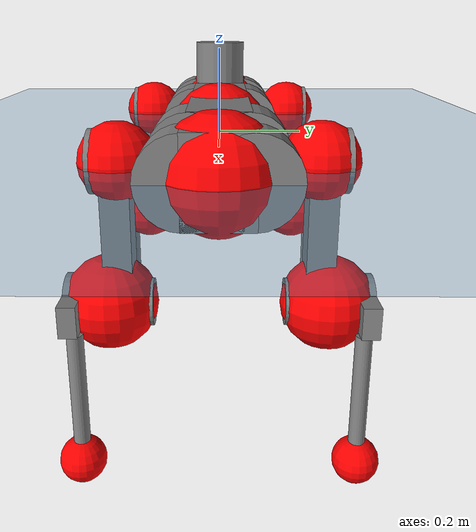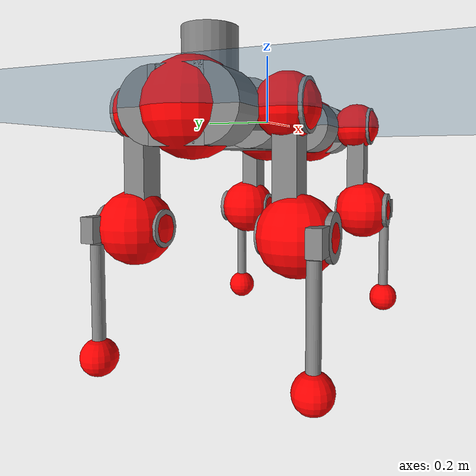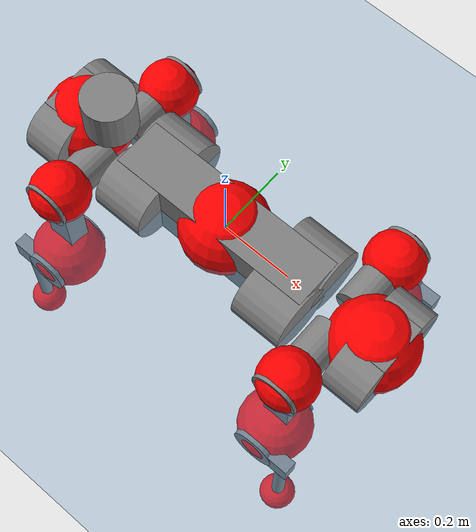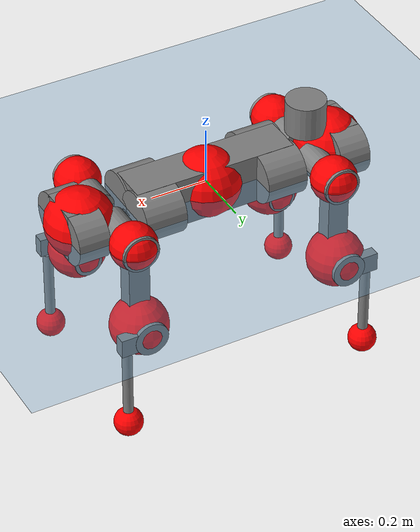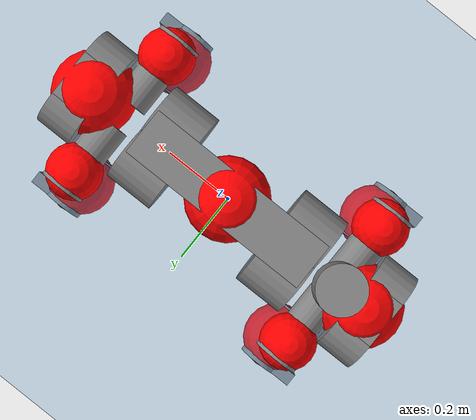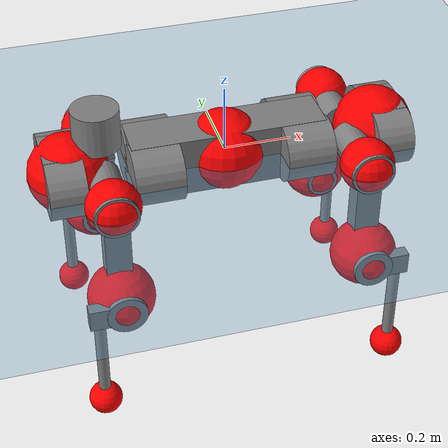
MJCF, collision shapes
<mujoco model="anymal_c">
  <compiler angle="radian" assetdir="assets" balanceinertia="true" inertiafromgeom="false"/>

  <option timestep="0.005" density="1.2" viscosity="2e-05"/>

  <size nkey="1"/>

  <visual>
    <quality shadowsize="8192"/>
    <map shadowclip="0.5"/>
  </visual>

  <default>
    <default class="/">
      <material specular="0" shininess="0.25"/>
      <geom contype="0" conaffinity="0" group="1" solref="-1000 -80"/>
      <site size="0.01 0.005 0.005" group="5"/>
      <general forcelimited="true" forcerange="-80 80" biastype="affine" gainprm="80" biasprm="0 -80 -2"/>
      <default class="anymal_c">
        <joint armature="0.01" damping="0.01" frictionloss="0.1"/>
        <default class="visual">
          <geom type="mesh" group="2"/>
          <default class="visual_zflip"/>
        </default>
        <default class="collision">
          <geom type="cylinder" group="3"/>
          <default class="foot">
            <geom size="0.03 0 0" type="sphere" condim="6" priority="1" friction="0.8 0.02 0.01" solimp="0.015 1 0.03"/>
          </default>
        </default>
      </default>
      <default class="reward_collision_sphere">
        <geom group="5" rgba="1 0 0 1"/>
      </default>
    </default>
  </default>

  <asset>
    <texture type="skybox" colorspace="auto" name="//unnamed_texture_0" builtin="gradient" rgb1="0.95 0.95 0.95" rgb2="0.95 0.95 0.95" width="100" height="600"/>
    <texture type="2d" colorspace="auto" name="texplane" builtin="checker" rgb1="0.345 0.575 0.748" rgb2="0.345 0.575 0.748" markrgb="1 1 1" width="512" height="512"/>
    <texture type="2d" colorspace="linear" name="base" file="base.png"/>
    <texture type="2d" colorspace="linear" name="top_shell" file="top_shell.png"/>
    <texture type="2d" colorspace="linear" name="bottom_shell" file="bottom_shell.png"/>
    <texture type="2d" colorspace="linear" name="remote" file="remote.png"/>
    <texture type="2d" colorspace="linear" name="hatch" file="hatch.png"/>
    <texture type="2d" colorspace="linear" name="handle" file="handle.png"/>
    <texture type="2d" colorspace="linear" name="face" file="face.png"/>
    <texture type="2d" colorspace="linear" name="battery" file="battery.png"/>
    <texture type="2d" colorspace="linear" name="lidar_cage" file="lidar_cage.png"/>
    <texture type="2d" colorspace="linear" name="depth_camera" file="depth_camera.png"/>
    <texture type="2d" colorspace="linear" name="wide_angle_camera" file="wide_angle_camera.png"/>
    <texture type="2d" colorspace="linear" name="lidar" file="lidar.png"/>
    <texture type="2d" colorspace="linear" name="drive" file="drive.png"/>
    <texture type="2d" colorspace="linear" name="hip_l" file="hip_l.png"/>
    <texture type="2d" colorspace="linear" name="shank_l" file="shank_l.png"/>
    <texture type="2d" colorspace="linear" name="foot" file="foot.png"/>
    <texture type="2d" colorspace="linear" name="thigh" file="thigh.png"/>
    <texture type="2d" colorspace="linear" name="shank_r" file="shank_r.png"/>
    <texture type="2d" colorspace="linear" name="hip_r" file="hip_r.png"/>
    <material name="MatPlane" class="/" texture="texplane" texuniform="true" texrepeat="2 2" specular="0.9" shininess="0.5"/>
    <material name="black_plastic" class="/" rgba="0.007 0.007 0.007 1"/>
    <material name="green" class="/" rgba="0.052 0.178 0.033 1"/>
    <material name="red" class="/" rgba="0.178 0.006 0.005 1"/>
    <material name="yellow" class="/" rgba="0.178 0.119 0.006 1"/>
    <material name="lwl" class="/" rgba="0.8 0.8 0.8 1"/>
    <material name="base" class="/" texture="base"/>
    <material name="top_shell" class="/" texture="top_shell"/>
    <material name="bottom_shell" class="/" texture="bottom_shell"/>
    <material name="hip_l" class="/" texture="hip_l"/>
    <material name="thigh" class="/" texture="thigh"/>
    <material name="shank_l" class="/" texture="shank_l"/>
    <material name="foot" class="/" texture="foot"/>
    <material name="hip_r" class="/" texture="hip_r"/>
    <material name="shank" class="/" texture="shank_r"/>
    <material name="hatch" class="/" texture="hatch"/>
    <material name="remote" class="/" texture="remote"/>
    <material name="handle" class="/" texture="handle"/>
    <material name="face" class="/" texture="face"/>
    <material name="depth_camera" class="/" texture="depth_camera"/>
    <material name="wide_angle_camera" class="/" texture="wide_angle_camera"/>
    <material name="battery" class="/" texture="battery"/>
    <material name="lidar_cage" class="/" texture="lidar_cage"/>
    <material name="lidar" class="/" texture="lidar"/>
    <material name="drive" class="/" texture="drive"/>
    <mesh name="base_0" class="/" file="base_0.obj"/>
    <mesh name="base_1" class="/" file="base_1.obj"/>
    <mesh name="base_2" class="/" file="base_2.obj"/>
    <mesh name="base_3" class="/" file="base_3.obj"/>
    <mesh name="base_4" class="/" file="base_4.obj"/>
    <mesh name="base_5" class="/" file="base_5.obj"/>
    <mesh name="top_shell" class="/" file="top_shell.obj"/>
    <mesh name="bottom_shell" class="/" file="bottom_shell.obj"/>
    <mesh name="remote" class="/" file="remote.obj"/>
    <mesh name="handle" class="/" file="handle.obj"/>
    <mesh name="face" class="/" file="face.obj"/>
    <mesh name="wide_angle_camera" class="/" file="wide_angle_camera.obj"/>
    <mesh name="depth_camera" class="/" file="depth_camera.obj"/>
    <mesh name="battery" class="/" file="battery.obj"/>
    <mesh name="lidar_cage" class="/" file="lidar_cage.obj"/>
    <mesh name="lidar" class="/" file="lidar.obj"/>
    <mesh name="drive" class="/" file="drive.obj"/>
    <mesh name="hip_l" class="/" file="hip_l.obj"/>
    <mesh name="thigh" class="/" file="thigh.obj"/>
    <mesh name="shank_l" class="/" file="shank_l.obj"/>
    <mesh name="foot" class="/" file="foot.obj"/>
    <mesh name="hip_r" class="/" file="hip_r.obj"/>
    <mesh name="hatch" class="/" file="hatch.obj"/>
    <mesh name="shank_r" class="/" file="shank_r.obj"/>
  </asset>

  <worldbody>
    <geom name="floor" class="/" size="100 100 0.125" type="plane" group="0" material="MatPlane"/>
    <light name="toplight_shadow" class="/" pos="0 0 5" dir="0.0990148 0.0990148 -0.990148" type="directional" ambient="0.04 0.04 0.04" diffuse="0.55 0.55 0.55" specular="0.12 0.12 0.12"/>
    <light name="toplight_fill" class="/" pos="0 0 5" dir="0.0990148 0.0990148 -0.990148" type="directional" castshadow="false" ambient="0.04 0.04 0.04" diffuse="0.3 0.3 0.3" specular="0.08 0.08 0.08"/>
    <body name="trunk" childclass="anymal_c" pos="0.000111055 0.000513795 0.000454668" quat="1 0.00017304 -2.64332e-05 0.000172684">
      <inertial pos="0.00322836 -0.00167297 0.0511148" quat="0.499824 0.498581 0.49805 0.503526" mass="18.1234" diaginertia="0.681744 0.356131 0.274622"/>
      <joint name="//unnamed_joint_0" type="free" armature="0" damping="0" frictionloss="0"/>
      <geom name="//unnamed_geom_1" class="visual" material="green" mesh="base_0"/>
      <geom name="//unnamed_geom_2" class="visual" material="yellow" mesh="base_1"/>
      <geom name="//unnamed_geom_3" class="visual" material="red" mesh="base_2"/>
      <geom name="//unnamed_geom_4" class="visual" material="black_plastic" mesh="base_3"/>
      <geom name="//unnamed_geom_5" class="visual" material="lwl" mesh="base_4"/>
      <geom name="//unnamed_geom_6" class="visual" material="base" mesh="base_5"/>
      <geom name="trunk_1" class="collision" size="0.287466 0.0693883 0.0892135" type="box"/>
      <geom name="trunk_2" class="collision" size="0.0892135 0.0718664" pos="0.222224 0.0629811 0" quat="0.707107 0 0.707107 0"/>
      <geom name="trunk_3" class="collision" size="0.0892135 0.0718664" pos="-0.222224 0.0629811 0" quat="0.707107 0 0.707107 0"/>
      <geom name="trunk_4" class="collision" size="0.0892135 0.0718664" pos="0.222224 -0.0629811 0" quat="0.707107 0 0.707107 0"/>
      <geom name="trunk_5" class="collision" size="0.0892135 0.0718664" pos="-0.222224 -0.0629811 0" quat="0.707107 0 0.707107 0"/>
      <geom name="//unnamed_geom_12" class="visual" material="top_shell" mesh="top_shell"/>
      <geom name="//unnamed_geom_13" class="visual" material="bottom_shell" mesh="bottom_shell"/>
      <geom name="//unnamed_geom_14" class="visual" material="remote" mesh="remote"/>
      <geom name="//unnamed_geom_15" class="visual" material="handle" mesh="handle"/>
      <geom name="//unnamed_geom_16" class="visual" pos="0.423503 0 0" quat="1 0 0 0" material="face" mesh="face"/>
      <geom name="trunk_6" class="collision" size="0.0545193 0.0693883 0.0892135" pos="0.479697 0 0" type="box"/>
      <geom name="//unnamed_geom_18" class="collision" size="0.0892135 0.0545193" pos="0.479697 0.0629811 0" quat="0.707107 0 0.707107 0"/>
      <geom name="//unnamed_geom_19" class="collision" size="0.0892135 0.0545193" pos="0.479697 -0.0629811 0" quat="0.707107 0 0.707107 0"/>
      <geom name="//unnamed_geom_20" class="visual" pos="0.471678 0 -0.0309608" quat="0.965926 0 0.258819 0" material="depth_camera" mesh="depth_camera"/>
      <geom name="//unnamed_geom_21" class="visual" pos="0.524142 0 0.0157534" material="wide_angle_camera" mesh="wide_angle_camera"/>
      <geom name="//unnamed_geom_22" class="visual_zflip" pos="-0.423503 0 0" quat="0 0 0 1" material="face" mesh="face"/>
      <geom name="trunk_7" class="collision" size="0.0545193 0.0693883 0.0892135" pos="-0.479697 0 0" quat="0 0 0 1" type="box"/>
      <geom name="//unnamed_geom_24" class="collision" size="0.0892135 0.0545193" pos="-0.479697 -0.0629811 0" quat="0 -0.707107 0 0.707107"/>
      <geom name="//unnamed_geom_25" class="collision" size="0.0892135 0.0545193" pos="-0.479697 0.0629811 0" quat="0 -0.707107 0 0.707107"/>
      <geom name="//unnamed_geom_26" class="visual" pos="-0.471678 0 -0.0309608" quat="0 -0.258819 0 0.965926" material="depth_camera" mesh="depth_camera"/>
      <geom name="//unnamed_geom_27" class="visual_zflip" pos="-0.524142 0 0.0157534" quat="0 0 0 1" material="wide_angle_camera" mesh="wide_angle_camera"/>
      <geom name="//unnamed_geom_28" class="visual" material="battery" mesh="battery"/>
      <geom name="//unnamed_geom_29" class="visual" pos="0 0.0671938 0.0303376" quat="0.683013 -0.183013 0.183013 0.683013" material="depth_camera" mesh="depth_camera"/>
      <geom name="//unnamed_geom_30" class="visual" pos="0 -0.0671938 0.0303376" quat="0.683013 0.183013 0.183013 -0.683013" material="depth_camera" mesh="depth_camera"/>
      <geom name="//unnamed_geom_31" class="visual" pos="-0.371906 0 0.0773465" quat="1 0 0 0" material="lidar_cage" mesh="lidar_cage"/>
      <geom name="trunk_8" class="collision" size="0.0693883 0.0594756" pos="-0.371906 0 0.140486"/>
      <geom name="//unnamed_geom_33" class="visual" pos="-0.371906 -4.79267e-05 0.149642" quat="0.707107 0 0 -0.707107" material="lidar" mesh="lidar"/>
      <geom name="//unnamed_geom_34" class="visual" pos="0.306414 0.0936261 -2.63243e-09" quat="0.258819 0.965926 0 0" material="drive" mesh="drive"/>
      <geom name="//unnamed_geom_35" class="visual" pos="0.306414 -0.0936261 2.63243e-09" quat="0.258819 -0.965926 0 0" material="drive" mesh="drive"/>
      <geom name="//unnamed_geom_36" class="visual" pos="-0.306414 0.0936261 2.63243e-09" quat="0 0 0.965926 -0.258819" material="drive" mesh="drive"/>
      <geom name="//unnamed_geom_37" class="visual" pos="-0.306414 -0.0936261 -2.63243e-09" quat="0 0 -0.965926 -0.258819" material="drive" mesh="drive"/>
      <geom name="//unnamed_geom_38" class="visual" pos="0.118519 0 0.0768203" quat="1 0 0 0" material="hatch" mesh="hatch"/>
      <geom name="//unnamed_geom_39" class="reward_collision_sphere" size="0.118951"/>
      <geom name="//unnamed_geom_40" class="reward_collision_sphere" size="0.118951" pos="0.459774 0 0"/>
      <geom name="//unnamed_geom_41" class="reward_collision_sphere" size="0.118951" pos="-0.459774 0 0"/>
      <site name="imu" pos="0.252399 0.00692663 0.0480624" size="0.00991261"/>
      <camera name="track" pos="0 -1.79946 0" quat="0.707107 0.707107 0 0" mode="trackcom"/>
      <camera name="ego_camera" pos="0.459774 0 -0.0420933" quat="-0.5 -0.5 0.5 0.5"/>
      <body name="LF_HIP" pos="0.307385 0.0937088 -0.000282118" quat="0.258826 0.965924 6.91539e-05 5.34017e-06">
        <inertial pos="0.0579952 -0.0137045 -0.00849155" quat="-0.124 0.71462 -0.140042 0.67404" mass="2.70779" diaginertia="0.00654566 0.00294542 0.00427381"/>
        <joint name="LF_HAA" pos="0 0 0" axis="0.999996 -0.00238213 0.00115567" range="-0.700047 0.48144" armature="0.00995581" damping="0.00936062" frictionloss="0.0985063"/>
        <geom name="//unnamed_geom_42" class="visual" pos="0 -0.000154854 2.54347e-05" quat="0.258819 -0.965926 0 0" material="hip_l" mesh="hip_l"/>
        <geom name="//unnamed_geom_43" class="visual" pos="0.061201 -0.0726061 -0.0430479" quat="0.183013 -0.683013 0.683013 0.183013" material="drive" mesh="drive"/>
        <geom name="//unnamed_geom_44" class="collision" size="0.049563 0.0693883" pos="0.061201 -0.0107606 -0.00726636" quat="-0.353553 -0.612372 0.612372 -0.353553"/>
        <body name="LF_THIGH" pos="0.0619516 -0.0666932 -0.045181" quat="0.183351 -0.6826 0.683456 0.182559">
          <inertial pos="0.0317029 0.00177891 -0.258984" quat="0.99304 -0.00545688 -0.0782904 0.0878213" mass="2.96088" diaginertia="0.0334059 0.0179813 0.00541498"/>
          <joint name="LF_HFE" pos="0 0 0" axis="1 -0.000132033 -0.00017108" range="-3.13661 3.11475" armature="0.0107183" damping="0.0122574" frictionloss="0.103598"/>
          <geom name="//unnamed_geom_45" class="visual" pos="0.00242713 3.82458e-06 0" quat="0.707107 0 0 -0.707107" material="thigh" mesh="thigh"/>
          <geom name="//unnamed_geom_46" class="collision" size="0.0644319 0.0396504" pos="0.0408688 0 0" quat="0.5 0.5 -0.5 -0.5"/>
          <geom name="//unnamed_geom_47" class="collision" size="0.0371723 0.0297378 0.140079" pos="0.0306516 0 -0.148709" quat="0.707107 0 0 -0.707107" type="box"/>
          <geom name="//unnamed_geom_48" class="visual" pos="0.102478 0 -0.299915" quat="1 0 0 0" material="drive" mesh="drive"/>
          <geom name="//unnamed_geom_49" class="collision" size="0.049563 0.0693883" pos="0.0309581 0 -0.299915" quat="0.707107 0 0.707107 0"/>
          <geom name="//unnamed_geom_50" class="reward_collision_sphere" size="0.0793009" pos="0.025543 0 0"/>
          <body name="LF_SHANK" pos="0.102793 -8.14231e-05 -0.300618" quat="1 4.92099e-05 -8.52863e-05 0.000208123">
            <inertial pos="0.00472868 -0.0543821 -0.0852033" quat="0.993178 -0.113503 0.00128847 -0.0266987" mass="0.573297" diaginertia="0.0114153 0.00557001 0.00144999"/>
            <joint name="LF_KFE" pos="0 0 0" axis="1 0.000902322 8.64282e-05" range="-3.10683 3.14197" armature="0.0104029" damping="0.00191704" frictionloss="0.0963396"/>
            <geom name="//unnamed_geom_51" class="visual" pos="0.000791433 0.00421996 0" quat="0.707107 0 0 -0.707107" material="shank_l" mesh="shank_l"/>
            <geom name="LF_kfe_act" class="collision" size="0.0594756 0.0198252" pos="0.0204344 0 0" quat="0.5 0.5 -0.5 -0.5"/>
            <geom name="//unnamed_geom_53" class="collision" size="0.0569965 0.0334551 0.018834" pos="0.0204344 -0.0517335 0" quat="0.5 0.5 -0.5 -0.5" type="box"/>
            <geom name="//unnamed_geom_54" class="visual" pos="0.0133332 -0.0777713 -0.355657" quat="0.382683 0 0 -0.92388" material="foot" mesh="foot"/>
            <geom name="LF_calf" class="collision" size="0.0173471 0.140018" pos="0.0133334 -0.0791312 -0.177829" quat="0.707107 0 0 -0.707107"/>
            <geom name="LF_foot" class="foot" size="0.0302365" pos="0.0133334 -0.0791312 -0.33198" quat="0.707107 0 0 -0.707107"/>
            <geom name="//unnamed_geom_57" class="reward_collision_sphere" size="0.0991261" pos="-0.051086 0 0"/>
            <geom name="//unnamed_geom_58" class="reward_collision_sphere" size="0.049563" pos="0.0133334 -0.0791312 -0.33198"/>
            <site name="LF_foot" class="foot" pos="0.0133334 -0.0791312 -0.33198" quat="0.707107 0 0 -0.707107" size="0.00991261"/>
          </body>
        </body>
      </body>
      <body name="RF_HIP" pos="0.305466 -0.0929426 -0.00186688" quat="0.259094 -0.965852 2.62055e-05 -8.94337e-05">
        <inertial pos="0.0575094 0.0131724 -0.00794566" quat="0.1328 0.676448 0.129681 0.712716" mass="2.72951" diaginertia="0.00653445 0.00290348 0.00420106"/>
        <joint name="RF_HAA" pos="0 0 0" axis="0.999996 -0.00255562 -0.000853794" range="-0.489189 0.73652" armature="0.0104566" damping="0.0122866" frictionloss="0.0977318"/>
        <geom name="//unnamed_geom_59" class="visual" pos="0 0.000154853 2.54346e-05" quat="0.258819 0.965926 0 0" material="hip_r" mesh="hip_r"/>
        <geom name="//unnamed_geom_60" class="visual" pos="0.061201 0.0726061 -0.0430479" quat="0.183013 0.683013 0.683013 -0.183013" material="drive" mesh="drive"/>
        <geom name="//unnamed_geom_61" class="collision" size="0.049563 0.0693883" pos="0.061201 0.0107606 -0.00726636" quat="-0.353553 0.612372 0.612372 0.353553"/>
        <body name="RF_THIGH" pos="0.0623289 0.0667719 -0.0459759" quat="0.183021 0.683059 0.682982 -0.182946">
          <inertial pos="0.0306206 0.000519849 -0.25704" quat="0.992572 -0.0038614 -0.0838488 0.0880592" mass="2.98455" diaginertia="0.0339629 0.017653 0.00540777"/>
          <joint name="RF_HFE" pos="0 0 0" axis="0.999987 -0.00267041 -0.00432775" stiffness="0.0112257" range="-3.13678 3.12502" armature="0.00951182" damping="0.0131687" frictionloss="0.102653"/>
          <geom name="//unnamed_geom_62" class="visual" pos="0.00242713 3.82458e-06 0" quat="0.707107 0 0 -0.707107" material="thigh" mesh="thigh"/>
          <geom name="//unnamed_geom_63" class="collision" size="0.0644319 0.0396504" pos="0.0408688 0 0" quat="0.5 0.5 0.5 0.5"/>
          <geom name="//unnamed_geom_64" class="collision" size="0.0371723 0.0297378 0.140079" pos="0.0306516 0 -0.148709" quat="0.707107 0 0 0.707107" type="box"/>
          <geom name="//unnamed_geom_65" class="visual" pos="0.102478 0 -0.299915" quat="1 0 0 0" material="drive" mesh="drive"/>
          <geom name="//unnamed_geom_66" class="collision" size="0.049563 0.0693883" pos="0.0309581 0 -0.299915" quat="0.707107 0 0.707107 0"/>
          <geom name="//unnamed_geom_67" class="reward_collision_sphere" size="0.0793009" pos="0.025543 0 0"/>
          <body name="RF_SHANK" pos="0.103148 -0.000679707 -0.298374" quat="1 8.81944e-05 -6.98908e-05 -8.45115e-05">
            <inertial pos="0.00655486 0.0546163 -0.0849942" quat="0.993083 0.11367 -0.000555695 0.0294055" mass="0.584462" diaginertia="0.0116672 0.00553522 0.00148794"/>
            <joint name="RF_KFE" pos="0 0 0" axis="0.999998 -0.00221426 0.000146163" range="-3.15411 3.13364" armature="0.00966097" damping="0" frictionloss="0.10288"/>
            <geom name="//unnamed_geom_68" class="visual" pos="0.000791429 -0.00421995 0" quat="0.707107 0 0 0.707107" material="shank" mesh="shank_r"/>
            <geom name="RF_kfe_act" class="collision" size="0.0594756 0.0198252" pos="0.0204344 0 0" quat="0.5 0.5 0.5 0.5"/>
            <geom name="//unnamed_geom_70" class="collision" size="0.0569965 0.0334551 0.018834" pos="0.0204344 0.0517335 0" quat="0.5 0.5 0.5 0.5" type="box"/>
            <geom name="//unnamed_geom_71" class="visual" pos="0.0133336 0.0777713 -0.355657" quat="0.382683 0 0 0.92388" material="foot" mesh="foot"/>
            <geom name="RF_calf" class="collision" size="0.0173471 0.140018" pos="0.0133334 0.0791312 -0.177829" quat="0.707107 0 0 0.707107"/>
            <geom name="RF_foot" class="foot" size="0.0269836" pos="0.0133334 0.0791312 -0.33198" quat="0.707107 0 0 0.707107"/>
            <geom name="//unnamed_geom_74" class="reward_collision_sphere" size="0.0991261" pos="-0.051086 0 0"/>
            <geom name="//unnamed_geom_75" class="reward_collision_sphere" size="0.049563" pos="0.0133334 0.0791312 -0.33198"/>
            <site name="RF_foot" class="foot" pos="0.0133334 0.0791312 -0.33198" quat="0.707107 0 0 0.707107" size="0.00991261"/>
          </body>
        </body>
      </body>
      <body name="LH_HIP" pos="-0.305889 0.0928859 0.000156706" quat="9.13139e-07 -0.00011744 0.965914 -0.258864">
        <inertial pos="0.0583665 0.0134831 -0.00952683" quat="0.135456 0.679362 0.12782 0.709775" mass="2.67727" diaginertia="0.00656275 0.00296694 0.00424432"/>
        <joint name="LH_HAA" pos="0 0 0" axis="0.999987 0.004313 -0.00266903" range="-0.485356 0.734942" armature="0.00983314" damping="0.0109208" frictionloss="0.0993065"/>
        <geom name="//unnamed_geom_76" class="visual" pos="0 0.000154853 2.54346e-05" quat="-0.258819 -0.965926 0 0" material="hip_r" mesh="hip_r"/>
        <geom name="//unnamed_geom_77" class="visual" pos="0.061201 0.0726061 -0.0430479" quat="0.183013 0.683013 0.683013 -0.183013" material="drive" mesh="drive"/>
        <geom name="//unnamed_geom_78" class="collision" size="0.049563 0.0693883" pos="0.061201 0.0107606 -0.00726636" quat="-0.353553 0.612372 0.612372 0.353553"/>
        <body name="LH_THIGH" pos="0.0607099 0.066485 -0.0446671" quat="0.18312 0.682546 0.683279 -0.183654">
          <inertial pos="0.0312444 0.00175887 -0.259086" quat="0.992775 -0.00512666 -0.0806699 0.0886822" mass="2.93146" diaginertia="0.0340253 0.0174145 0.0054489"/>
          <joint name="LH_HFE" pos="0 0 0" axis="0.999968 0.00231022 0.00769645" range="-3.1529 3.14499" armature="0.00962563" damping="0.00842093" frictionloss="0.103522"/>
          <geom name="//unnamed_geom_79" class="visual" pos="0.00242713 3.82458e-06 0" quat="0.707107 0 0 -0.707107" material="thigh" mesh="thigh"/>
          <geom name="//unnamed_geom_80" class="collision" size="0.0644319 0.0396504" pos="0.0408688 0 0" quat="0.5 0.5 -0.5 -0.5"/>
          <geom name="//unnamed_geom_81" class="collision" size="0.0371723 0.0297378 0.140079" pos="0.0306516 0 -0.148709" quat="0.707107 0 0 -0.707107" type="box"/>
          <geom name="//unnamed_geom_82" class="visual" pos="0.102478 0 -0.299915" quat="1 0 0 0" material="drive" mesh="drive"/>
          <geom name="//unnamed_geom_83" class="collision" size="0.049563 0.0693883" pos="0.0309581 0 -0.299915" quat="0.707107 0 0.707107 0"/>
          <geom name="//unnamed_geom_84" class="reward_collision_sphere" size="0.0793009" pos="0.025543 0 0"/>
          <body name="LH_SHANK" pos="0.103363 -0.00148957 -0.300884" quat="1 -0.000256899 0.000285143 0.00046761">
            <inertial pos="0.00578111 0.0553145 -0.0851705" quat="0.992939 0.11587 -0.00100981 0.0254208" mass="0.579733" diaginertia="0.011426 0.00549272 0.00145194"/>
            <joint name="LH_KFE" pos="0 0 0" axis="0.999999 -0.00103897 -0.000269866" range="-3.11522 3.14458" armature="0.0107545" damping="0.00765501" frictionloss="0.102239"/>
            <geom name="//unnamed_geom_85" class="visual" pos="0.000791429 -0.00421995 0" quat="-0.707107 0 0 -0.707107" material="shank" mesh="shank_r"/>
            <geom name="LH_kfe_act" class="collision" size="0.0594756 0.0198252" pos="0.0204344 0 0" quat="0.5 0.5 -0.5 -0.5"/>
            <geom name="//unnamed_geom_87" class="collision" size="0.0569965 0.0334551 0.018834" pos="0.0204344 0.0517335 0" quat="0.5 0.5 -0.5 -0.5" type="box"/>
            <geom name="//unnamed_geom_88" class="visual" pos="0.0133336 0.0777713 -0.355657" quat="-0.382683 0 0 -0.92388" material="foot" mesh="foot"/>
            <geom name="LH_calf" class="collision" size="0.0173471 0.140018" pos="0.0133334 0.0791312 -0.177829" quat="0.707107 0 0 -0.707107"/>
            <geom name="LH_foot" class="foot" size="0.0311848" pos="0.0133334 0.0791312 -0.33198" quat="0.707107 0 0 -0.707107"/>
            <geom name="//unnamed_geom_91" class="reward_collision_sphere" size="0.0991261" pos="-0.051086 0 0"/>
            <geom name="//unnamed_geom_92" class="reward_collision_sphere" size="0.049563" pos="0.0133334 0.0791312 -0.33198"/>
            <site name="LH_foot" class="foot" pos="0.0133334 0.0791312 -0.33198" quat="0.707107 0 0 -0.707107" size="0.00991261"/>
          </body>
        </body>
      </body>
      <body name="RH_HIP" pos="-0.307946 -0.0937512 -0.000246862" quat="2.42621e-05 -0.000841245 -0.965764 -0.259419">
        <inertial pos="0.0577622 -0.0134582 -0.00946213" quat="-0.128278 0.709816 -0.135042 0.679315" mass="2.74094" diaginertia="0.00659333 0.00291859 0.00439824"/>
        <joint name="RH_HAA" pos="0 0 0" axis="0.999998 -0.0014458 0.00154523" range="-0.727888 0.485077" armature="0.0104398" damping="0.0101578" frictionloss="0.0955025"/>
        <geom name="//unnamed_geom_93" class="visual" pos="0 -0.000154854 2.54347e-05" quat="-0.258819 0.965926 0 0" material="hip_l" mesh="hip_l"/>
        <geom name="//unnamed_geom_94" class="visual" pos="0.061201 -0.0726061 -0.0430479" quat="-0.183013 0.683013 -0.683013 -0.183013" material="drive" mesh="drive"/>
        <geom name="//unnamed_geom_95" class="collision" size="0.049563 0.0693883" pos="0.061201 -0.0107606 -0.00726636" quat="0.353553 0.612372 -0.612372 0.353553"/>
        <body name="RH_THIGH" pos="0.0615675 -0.0655908 -0.0442551" quat="-0.182873 0.682719 -0.683264 -0.18331">
          <inertial pos="0.0319034 -1.76109e-05 -0.258319" quat="0.993335 -0.00415342 -0.0782772 0.0845025" mass="2.97976" diaginertia="0.0335416 0.0177146 0.00544514"/>
          <joint name="RH_HFE" pos="0 0 0" axis="0.999999 -0.00143845 -0.000895756" range="-3.14 3.17913" armature="0.00914506" damping="0.0100486" frictionloss="0.0988851"/>
          <geom name="//unnamed_geom_96" class="visual" pos="0.00242713 3.82458e-06 0" quat="0.707107 0 0 -0.707107" material="thigh" mesh="thigh"/>
          <geom name="//unnamed_geom_97" class="collision" size="0.0644319 0.0396504" pos="0.0408688 0 0" quat="0.5 0.5 0.5 0.5"/>
          <geom name="//unnamed_geom_98" class="collision" size="0.0371723 0.0297378 0.140079" pos="0.0306516 0 -0.148709" quat="0.707107 0 0 0.707107" type="box"/>
          <geom name="//unnamed_geom_99" class="visual" pos="0.102478 0 -0.299915" quat="1 0 0 0" material="drive" mesh="drive"/>
          <geom name="//unnamed_geom_100" class="collision" size="0.049563 0.0693883" pos="0.0309581 0 -0.299915" quat="0.707107 0 0.707107 0"/>
          <geom name="//unnamed_geom_101" class="reward_collision_sphere" size="0.0793009" pos="0.025543 0 0"/>
          <body name="RH_SHANK" pos="0.101434 0.000663722 -0.300242" quat="1 1.60635e-05 3.5478e-05 4.70038e-05">
            <inertial pos="0.00656069 -0.0545405 -0.0851614" quat="0.992973 -0.115612 -0.00130357 -0.0252439" mass="0.568367" diaginertia="0.0112539 0.00537093 0.00143602"/>
            <joint name="RH_KFE" pos="0 0 0" axis="0.999986 0.00174576 0.00498721" stiffness="0.000761579" range="-3.10353 3.11665" armature="0.00960861" damping="0.00694117" frictionloss="0.0946356"/>
            <geom name="//unnamed_geom_102" class="visual" pos="0.000791433 0.00421996 0" quat="0.707107 0 0 -0.707107" material="shank_l" mesh="shank_l"/>
            <geom name="RH_kfe_act" class="collision" size="0.0594756 0.0198252" pos="0.0204344 0 0" quat="0.5 0.5 0.5 0.5"/>
            <geom name="//unnamed_geom_104" class="collision" size="0.0569965 0.0334551 0.018834" pos="0.0204344 -0.0517335 0" quat="0.5 0.5 0.5 0.5" type="box"/>
            <geom name="//unnamed_geom_105" class="visual" pos="0.0133332 -0.0777713 -0.355657" quat="0.382683 0 0 -0.92388" material="foot" mesh="foot"/>
            <geom name="RH_calf" class="collision" size="0.0173471 0.140018" pos="0.0133334 -0.0791312 -0.177829" quat="0.707107 0 0 0.707107"/>
            <geom name="RH_foot" class="foot" size="0.0290126" pos="0.0133334 -0.0791312 -0.33198" quat="0.707107 0 0 0.707107"/>
            <geom name="//unnamed_geom_108" class="reward_collision_sphere" size="0.0991261" pos="-0.051086 0 0"/>
            <geom name="//unnamed_geom_109" class="reward_collision_sphere" size="0.049563" pos="0.0133334 -0.0791312 -0.33198"/>
            <site name="RH_foot" class="foot" pos="0.0133334 -0.0791312 -0.33198" quat="0.707107 0 0 0.707107" size="0.00991261"/>
          </body>
        </body>
      </body>
    </body>
  </worldbody>

  <contact>
    <pair class="/" geom1="floor" geom2="LF_foot" name="//unnamed_contact_0"/>
    <pair class="/" geom1="floor" geom2="RF_foot" name="//unnamed_contact_1"/>
    <pair class="/" geom1="floor" geom2="LH_foot" name="//unnamed_contact_2"/>
    <pair class="/" geom1="floor" geom2="RH_foot" name="//unnamed_contact_3"/>
  </contact>

  <actuator>
    <general name="LF_HAA" class="/" joint="LF_HAA" forcerange="-77.1599 77.1599" gainprm="80.2761" biasprm="0 -80.2761 -1.87575"/>
    <general name="LF_HFE" class="/" joint="LF_HFE" forcerange="-79.2413 79.2413" gainprm="80.2761" biasprm="0 -80.2761 -1.87575"/>
    <general name="LF_KFE" class="/" joint="LF_KFE" forcerange="-80.4513 80.4513" gainprm="80.2761" biasprm="0 -80.2761 -1.87575"/>
    <general name="RF_HAA" class="/" joint="RF_HAA" forcerange="-82.9945 82.9945" gainprm="80.2761" biasprm="0 -80.2761 -1.87575"/>
    <general name="RF_HFE" class="/" joint="RF_HFE" forcerange="-79.8246 79.8246" gainprm="80.2761" biasprm="0 -80.2761 -1.87575"/>
    <general name="RF_KFE" class="/" joint="RF_KFE" forcerange="-80.0365 80.0365" gainprm="80.2761" biasprm="0 -80.2761 -1.87575"/>
    <general name="LH_HAA" class="/" joint="LH_HAA" forcerange="-80.3299 80.3299" gainprm="80.2761" biasprm="0 -80.2761 -1.87575"/>
    <general name="LH_HFE" class="/" joint="LH_HFE" forcerange="-79.8199 79.8199" gainprm="80.2761" biasprm="0 -80.2761 -1.87575"/>
    <general name="LH_KFE" class="/" joint="LH_KFE" forcerange="-77.871 77.871" gainprm="80.2761" biasprm="0 -80.2761 -1.87575"/>
    <general name="RH_HAA" class="/" joint="RH_HAA" forcerange="-82.5446 82.5446" gainprm="80.2761" biasprm="0 -80.2761 -1.87575"/>
    <general name="RH_HFE" class="/" joint="RH_HFE" forcerange="-77.1645 77.1645" gainprm="80.2761" biasprm="0 -80.2761 -1.87575"/>
    <general name="RH_KFE" class="/" joint="RH_KFE" forcerange="-82.2775 82.2775" gainprm="80.2761" biasprm="0 -80.2761 -1.87575"/>
  </actuator>

  <sensor>
    <gyro site="imu" name="imu_angular_velocity"/>
    <velocimeter site="imu" name="imu_linear_velocity"/>
    <framelinvel objtype="site" objname="LF_foot" name="LF_foot_global_linear_velocity"/>
    <framelinvel objtype="site" objname="RF_foot" name="RF_foot_global_linear_velocity"/>
    <framelinvel objtype="site" objname="LH_foot" name="LH_foot_global_linear_velocity"/>
    <framelinvel objtype="site" objname="RH_foot" name="RH_foot_global_linear_velocity"/>
  </sensor>

  <keyframe>
    <key name="home" qpos="0 0 0.55 1 0 0 0 0 0.4 -0.8 0 -0.4 0.8 0 -0.4 0.8 0 0.4 -0.8"/>
  </keyframe>
</mujoco>
